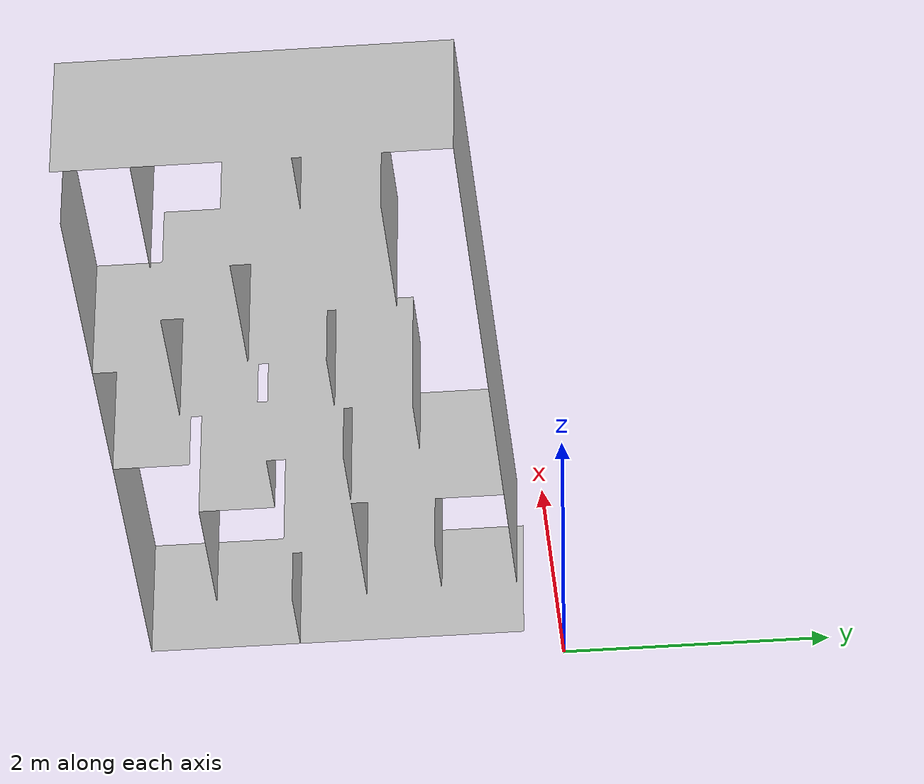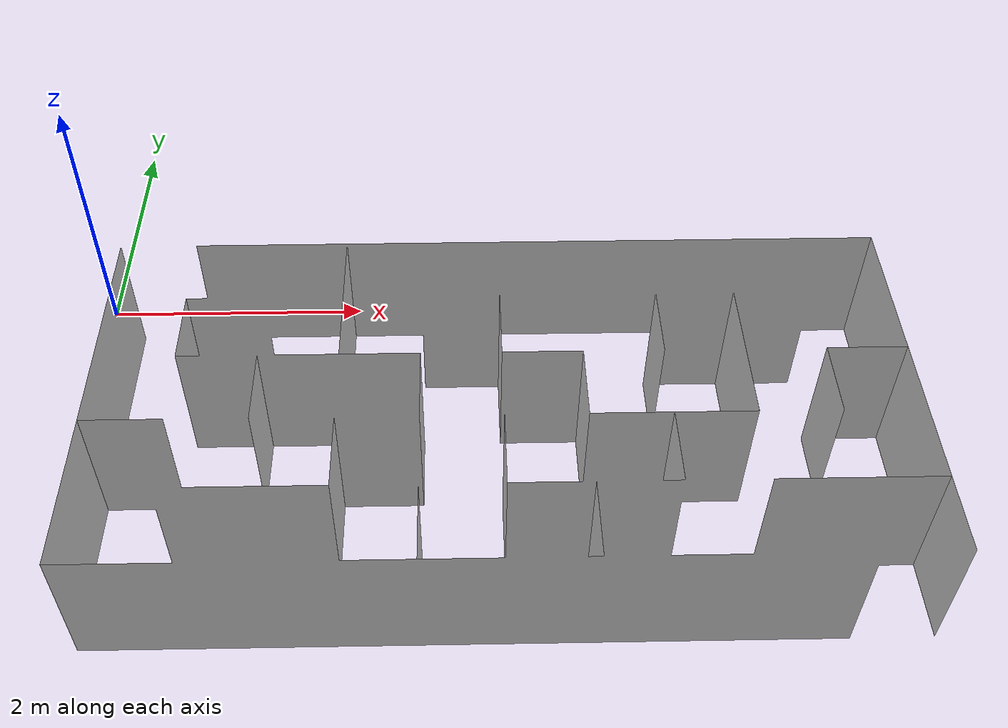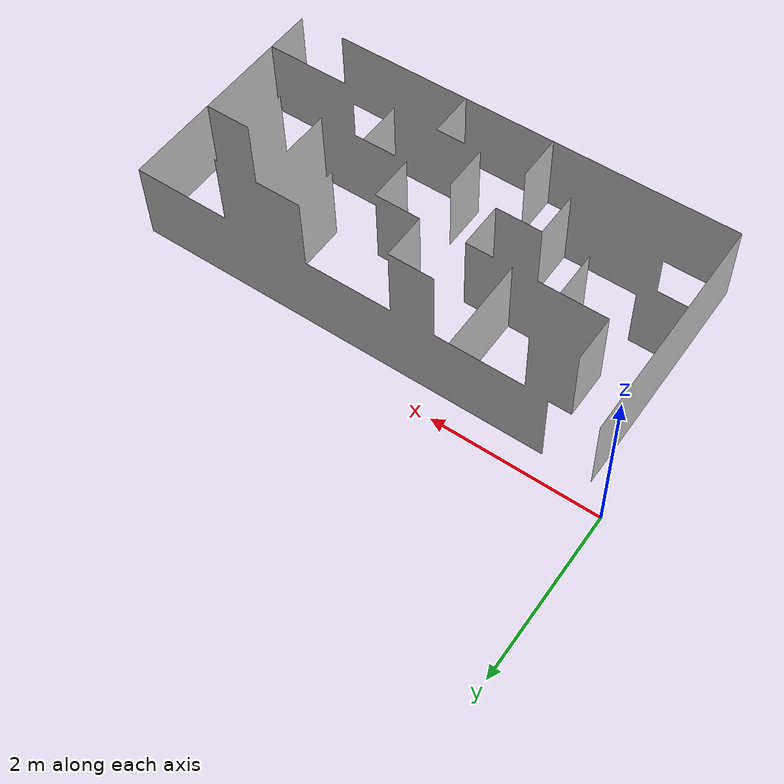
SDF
<?xml version="1.0" ?>
<sdf version="1.6">
  <model name="maze">
    <static>true</static>
    <link name="link">
      <collision name="collision">
        <geometry>
          <mesh>
            <uri>model://maze/meshes/maze.dae</uri>
          </mesh>
        </geometry>
      </collision>
      <visual name="visual">
        <geometry>
          <mesh>
            <uri>model://maze/meshes/maze.dae</uri>
          </mesh>
        </geometry>
      </visual>
    </link>
  </model>
</sdf>
